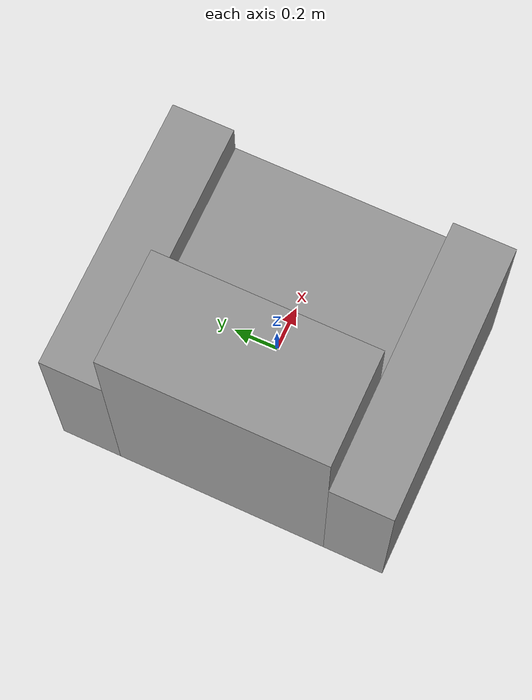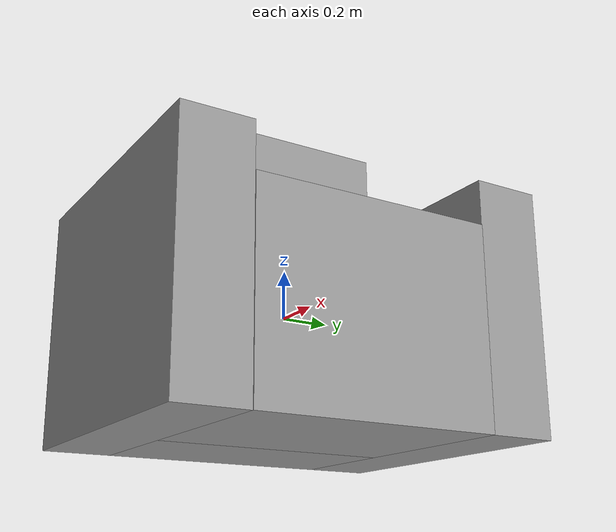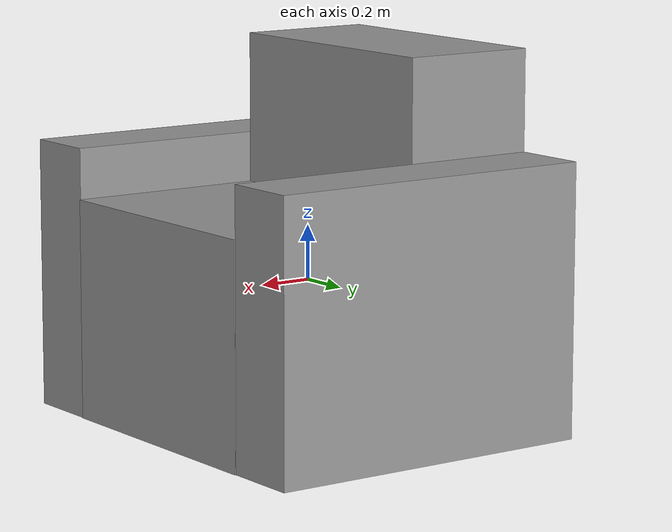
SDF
<?xml version='1.0'?>
<sdf version='1.6'>
  <model name='small_sofa'>
    <link name='link_0'>
      <pose frame=''>-0.343323 0 0.163374 0 -0 0</pose>
      <inertial>
        <mass>0.692242</mass>
        <inertia>
          <ixx>0.165884</ixx>
          <ixy>0</ixy>
          <ixz>0</ixz>
          <iyy>0.123566</iyy>
          <iyz>0</iyz>
          <izz>0.0719312</izz>
        </inertia>
        <pose frame=''>0 0 0 0 -0 0</pose>
      </inertial>
      <visual name='visual'>
        <pose frame=''>0 0 0 0 -0 0</pose>
        <geometry>
          <box>
            <size>0.50663 0.995112 1.37309</size>
          </box>
        </geometry>
        <material>
          <lighting>1</lighting>
          <script>
            <uri>file://media/materials/scripts/gazebo.material</uri>
            <name>Gazebo/Grey</name>
          </script>
          <ambient>0.3 0.3 0.3 1</ambient>
          <diffuse>0.7 0.7 0.7 1</diffuse>
          <specular>0.01 0.01 0.01 1</specular>
          <emissive>0 0 0 1</emissive>
        </material>
        <cast_shadows>1</cast_shadows>
        <transparency>0</transparency>
      </visual>
      <collision name='collision'>
        <laser_retro>0</laser_retro>
        <max_contacts>10</max_contacts>
        <pose frame=''>0 0 0 0 -0 0</pose>
        <geometry>
          <box>
            <size>0.50663 0.995112 1.37309</size>
          </box>
        </geometry>
        <surface>
          <friction>
            <ode>
              <mu>1</mu>
              <mu2>1</mu2>
              <fdir1>0 0 0</fdir1>
              <slip1>0</slip1>
              <slip2>0</slip2>
            </ode>
            <torsional>
              <coefficient>1</coefficient>
              <patch_radius>0</patch_radius>
              <surface_radius>0</surface_radius>
              <use_patch_radius>1</use_patch_radius>
              <ode>
                <slip>0</slip>
              </ode>
            </torsional>
          </friction>
          <bounce>
            <restitution_coefficient>0</restitution_coefficient>
            <threshold>1e+06</threshold>
          </bounce>
          <contact>
            <collide_without_contact>0</collide_without_contact>
            <collide_without_contact_bitmask>1</collide_without_contact_bitmask>
            <collide_bitmask>1</collide_bitmask>
            <ode>
              <soft_cfm>0</soft_cfm>
              <soft_erp>0.2</soft_erp>
              <kp>1e+13</kp>
              <kd>1</kd>
              <max_vel>0.01</max_vel>
              <min_depth>0</min_depth>
            </ode>
            <bullet>
              <split_impulse>1</split_impulse>
              <split_impulse_penetration_threshold>-0.01</split_impulse_penetration_threshold>
              <soft_cfm>0</soft_cfm>
              <soft_erp>0.2</soft_erp>
              <kp>1e+13</kp>
              <kd>1</kd>
            </bullet>
          </contact>
        </surface>
      </collision>
    </link>
    <link name='link_0_clone'>
      <pose frame=''>0.284589 0 -0.11703 0 -0 0</pose>
      <inertial>
        <mass>0.605576</mass>
        <inertia>
          <ixx>0.0832689</ixx>
          <ixy>0</ixy>
          <ixz>0</ixz>
          <iyy>0.0616212</iyy>
          <iyz>0</iyz>
          <izz>0.0782979</izz>
        </inertia>
        <pose frame=''>0 0 0 0 -0 0</pose>
      </inertial>
      <visual name='visual'>
        <pose frame=''>0 0 0 0 -0 0</pose>
        <geometry>
          <box>
            <size>0.749193 0.995112 0.812285</size>
          </box>
        </geometry>
        <material>
          <lighting>1</lighting>
          <script>
            <uri>file://media/materials/scripts/gazebo.material</uri>
            <name>Gazebo/Grey</name>
          </script>
          <ambient>0.3 0.3 0.3 1</ambient>
          <diffuse>0.7 0.7 0.7 1</diffuse>
          <specular>0.01 0.01 0.01 1</specular>
          <emissive>0 0 0 1</emissive>
          <shader type='pixel'/>
        </material>
        <cast_shadows>1</cast_shadows>
        <transparency>0</transparency>
      </visual>
      <collision name='collision'>
        <laser_retro>0</laser_retro>
        <max_contacts>10</max_contacts>
        <pose frame=''>0 0 0 0 -0 0</pose>
        <geometry>
          <box>
            <size>0.749193 0.995112 0.812285</size>
          </box>
        </geometry>
        <surface>
          <friction>
            <ode>
              <mu>1</mu>
              <mu2>1</mu2>
              <fdir1>0 0 0</fdir1>
              <slip1>0</slip1>
              <slip2>0</slip2>
            </ode>
            <torsional>
              <coefficient>1</coefficient>
              <patch_radius>0</patch_radius>
              <surface_radius>0</surface_radius>
              <use_patch_radius>1</use_patch_radius>
              <ode>
                <slip>0</slip>
              </ode>
            </torsional>
          </friction>
          <bounce>
            <restitution_coefficient>0</restitution_coefficient>
            <threshold>1e+06</threshold>
          </bounce>
          <contact>
            <collide_without_contact>0</collide_without_contact>
            <collide_without_contact_bitmask>1</collide_without_contact_bitmask>
            <collide_bitmask>1</collide_bitmask>
            <ode>
              <soft_cfm>0</soft_cfm>
              <soft_erp>0.2</soft_erp>
              <kp>1e+13</kp>
              <kd>1</kd>
              <max_vel>0.01</max_vel>
              <min_depth>0</min_depth>
            </ode>
            <bullet>
              <split_impulse>1</split_impulse>
              <split_impulse_penetration_threshold>-0.01</split_impulse_penetration_threshold>
              <soft_cfm>0</soft_cfm>
              <soft_erp>0.2</soft_erp>
              <kp>1e+13</kp>
              <kd>1</kd>
            </bullet>
          </contact>
        </surface>
      </collision>
    </link>
    <link name='link_1'>
      <pose frame=''>0.029367 0.639671 -0.023172 0 -0 0</pose>
      <inertial>
        <mass>0.355854</mass>
        <inertia>
          <ixx>0.0320502</ixx>
          <ixy>0</ixy>
          <ixz>0</ixz>
          <iyy>0.0761386</iyy>
          <iyz>0</iyz>
          <izz>0.0488797</izz>
        </inertia>
        <pose frame=''>0 0 0 0 -0 0</pose>
      </inertial>
      <visual name='visual'>
        <pose frame=''>0 0 0 0 -0 0</pose>
        <geometry>
          <box>
            <size>1.25201 0.284226 1</size>
          </box>
        </geometry>
        <material>
          <lighting>1</lighting>
          <script>
            <uri>file://media/materials/scripts/gazebo.material</uri>
            <name>Gazebo/Grey</name>
          </script>
          <ambient>0.3 0.3 0.3 1</ambient>
          <diffuse>0.7 0.7 0.7 1</diffuse>
          <specular>0.01 0.01 0.01 1</specular>
          <emissive>0 0 0 1</emissive>
        </material>
        <cast_shadows>1</cast_shadows>
        <transparency>0</transparency>
      </visual>
      <collision name='collision'>
        <laser_retro>0</laser_retro>
        <max_contacts>10</max_contacts>
        <pose frame=''>0 0 0 0 -0 0</pose>
        <geometry>
          <box>
            <size>1.25201 0.284226 1</size>
          </box>
        </geometry>
        <surface>
          <friction>
            <ode>
              <mu>1</mu>
              <mu2>1</mu2>
              <fdir1>0 0 0</fdir1>
              <slip1>0</slip1>
              <slip2>0</slip2>
            </ode>
            <torsional>
              <coefficient>1</coefficient>
              <patch_radius>0</patch_radius>
              <surface_radius>0</surface_radius>
              <use_patch_radius>1</use_patch_radius>
              <ode>
                <slip>0</slip>
              </ode>
            </torsional>
          </friction>
          <bounce>
            <restitution_coefficient>0</restitution_coefficient>
            <threshold>1e+06</threshold>
          </bounce>
          <contact>
            <collide_without_contact>0</collide_without_contact>
            <collide_without_contact_bitmask>1</collide_without_contact_bitmask>
            <collide_bitmask>1</collide_bitmask>
            <ode>
              <soft_cfm>0</soft_cfm>
              <soft_erp>0.2</soft_erp>
              <kp>1e+13</kp>
              <kd>1</kd>
              <max_vel>0.01</max_vel>
              <min_depth>0</min_depth>
            </ode>
            <bullet>
              <split_impulse>1</split_impulse>
              <split_impulse_penetration_threshold>-0.01</split_impulse_penetration_threshold>
              <soft_cfm>0</soft_cfm>
              <soft_erp>0.2</soft_erp>
              <kp>1e+13</kp>
              <kd>1</kd>
            </bullet>
          </contact>
        </surface>
      </collision>
    </link>
    <link name='link_1_clone'>
      <pose frame=''>0.029367 -0.639671 -0.023172 0 -0 0</pose>
      <inertial>
        <mass>0.355854</mass>
        <inertia>
          <ixx>0.0320502</ixx>
          <ixy>0</ixy>
          <ixz>0</ixz>
          <iyy>0.0761386</iyy>
          <iyz>0</iyz>
          <izz>0.0488797</izz>
        </inertia>
        <pose frame=''>0 0 0 0 -0 0</pose>
      </inertial>
      <visual name='visual'>
        <pose frame=''>0 0 0 0 -0 0</pose>
        <geometry>
          <box>
            <size>1.25201 0.284226 1</size>
          </box>
        </geometry>
        <material>
          <lighting>1</lighting>
          <script>
            <uri>file://media/materials/scripts/gazebo.material</uri>
            <name>Gazebo/Grey</name>
          </script>
          <ambient>0.3 0.3 0.3 1</ambient>
          <diffuse>0.7 0.7 0.7 1</diffuse>
          <specular>0.01 0.01 0.01 1</specular>
          <emissive>0 0 0 1</emissive>
          <shader type='pixel'/>
        </material>
        <cast_shadows>1</cast_shadows>
        <transparency>0</transparency>
      </visual>
      <collision name='collision'>
        <laser_retro>0</laser_retro>
        <max_contacts>10</max_contacts>
        <pose frame=''>0 0 0 0 -0 0</pose>
        <geometry>
          <box>
            <size>1.25201 0.284226 1</size>
          </box>
        </geometry>
        <surface>
          <friction>
            <ode>
              <mu>1</mu>
              <mu2>1</mu2>
              <fdir1>0 0 0</fdir1>
              <slip1>0</slip1>
              <slip2>0</slip2>
            </ode>
            <torsional>
              <coefficient>1</coefficient>
              <patch_radius>0</patch_radius>
              <surface_radius>0</surface_radius>
              <use_patch_radius>1</use_patch_radius>
              <ode>
                <slip>0</slip>
              </ode>
            </torsional>
          </friction>
          <bounce>
            <restitution_coefficient>0</restitution_coefficient>
            <threshold>1e+06</threshold>
          </bounce>
          <contact>
            <collide_without_contact>0</collide_without_contact>
            <collide_without_contact_bitmask>1</collide_without_contact_bitmask>
            <collide_bitmask>1</collide_bitmask>
            <ode>
              <soft_cfm>0</soft_cfm>
              <soft_erp>0.2</soft_erp>
              <kp>1e+13</kp>
              <kd>1</kd>
              <max_vel>0.01</max_vel>
              <min_depth>0</min_depth>
            </ode>
            <bullet>
              <split_impulse>1</split_impulse>
              <split_impulse_penetration_threshold>-0.01</split_impulse_penetration_threshold>
              <soft_cfm>0</soft_cfm>
              <soft_erp>0.2</soft_erp>
              <kp>1e+13</kp>
              <kd>1</kd>
            </bullet>
          </contact>
        </surface>
      </collision>
    </link>
    <joint name='link_0_JOINT_1' type='revolute'>
      <parent>link_0</parent>
      <child>link_1_clone</child>
      <pose frame=''>0 0 0 0 -0 0</pose>
      <axis>
        <xyz>1 0 0</xyz>
        <use_parent_model_frame>0</use_parent_model_frame>
        <limit>
          <lower>-1.79769e+308</lower>
          <upper>1.79769e+308</upper>
          <effort>-1</effort>
          <velocity>-1</velocity>
        </limit>
        <dynamics>
          <spring_reference>0</spring_reference>
          <spring_stiffness>0</spring_stiffness>
          <damping>0</damping>
        </dynamics>
      </axis>
      <physics>
        <ode>
          <limit>
            <cfm>0</cfm>
            <erp>0.2</erp>
          </limit>
          <suspension>
            <cfm>0</cfm>
            <erp>0.2</erp>
          </suspension>
        </ode>
      </physics>
    </joint>
    <joint name='link_0_JOINT_2' type='revolute'>
      <parent>link_0</parent>
      <child>link_0_clone</child>
      <pose frame=''>0 0 0 0 -0 0</pose>
      <axis>
        <xyz>1 0 0</xyz>
        <use_parent_model_frame>0</use_parent_model_frame>
        <limit>
          <lower>-1.79769e+308</lower>
          <upper>1.79769e+308</upper>
          <effort>-1</effort>
          <velocity>-1</velocity>
        </limit>
        <dynamics>
          <spring_reference>0</spring_reference>
          <spring_stiffness>0</spring_stiffness>
          <damping>0</damping>
        </dynamics>
      </axis>
      <physics>
        <ode>
          <limit>
            <cfm>0</cfm>
            <erp>0.2</erp>
          </limit>
          <suspension>
            <cfm>0</cfm>
            <erp>0.2</erp>
          </suspension>
        </ode>
      </physics>
    </joint>
    <joint name='link_1_JOINT_0' type='revolute'>
      <parent>link_1</parent>
      <child>link_0</child>
      <pose frame=''>0 0 0 0 -0 0</pose>
      <axis>
        <xyz>1 0 0</xyz>
        <use_parent_model_frame>0</use_parent_model_frame>
        <limit>
          <lower>-1.79769e+308</lower>
          <upper>1.79769e+308</upper>
          <effort>-1</effort>
          <velocity>-1</velocity>
        </limit>
        <dynamics>
          <spring_reference>0</spring_reference>
          <spring_stiffness>0</spring_stiffness>
          <damping>0</damping>
        </dynamics>
      </axis>
      <physics>
        <ode>
          <limit>
            <cfm>0</cfm>
            <erp>0.2</erp>
          </limit>
          <suspension>
            <cfm>0</cfm>
            <erp>0.2</erp>
          </suspension>
        </ode>
      </physics>
    </joint>
    <static>0</static>
    <allow_auto_disable>1</allow_auto_disable>
  </model>
</sdf>
